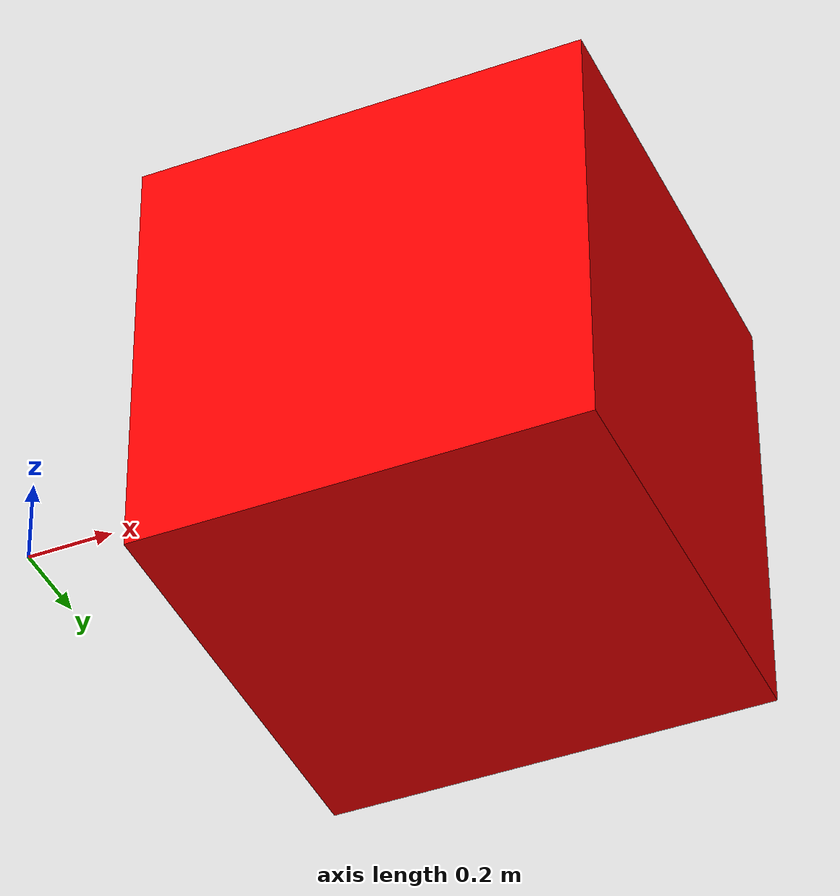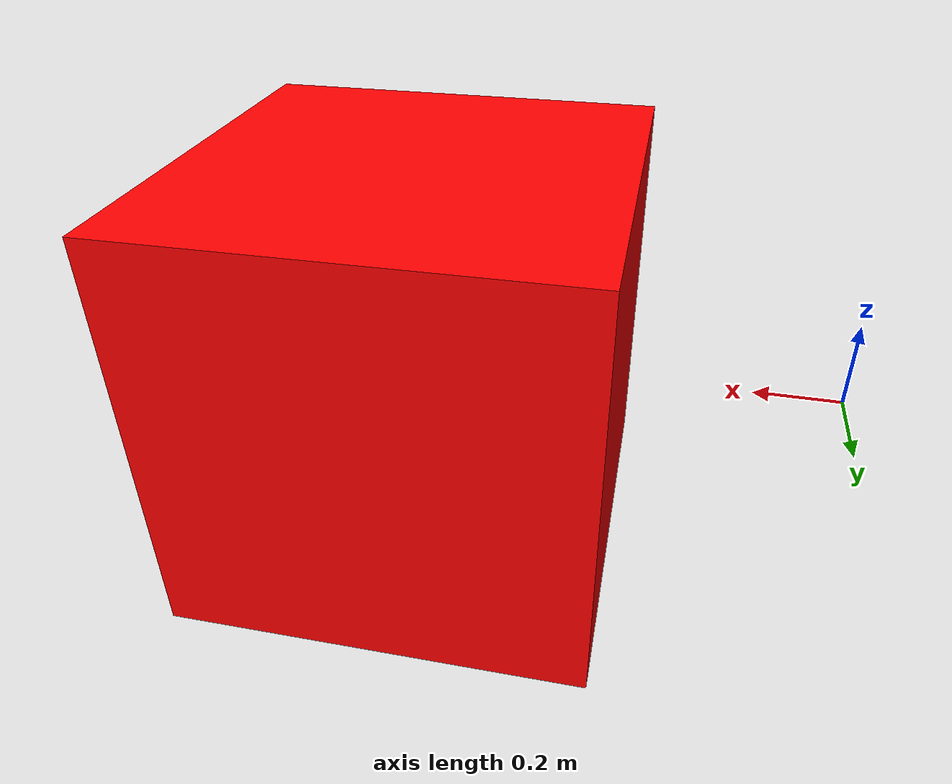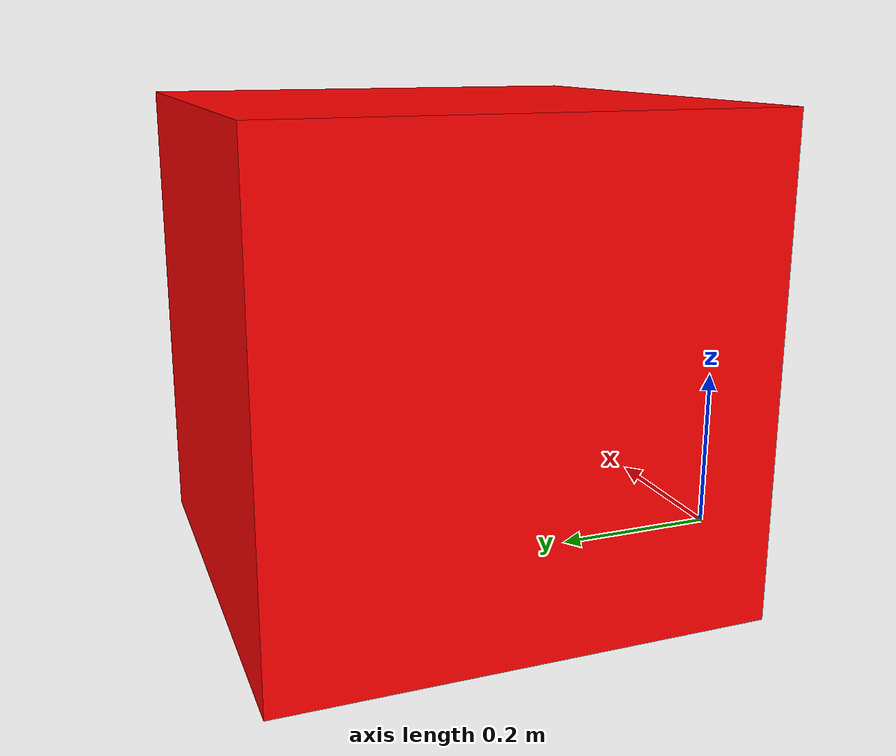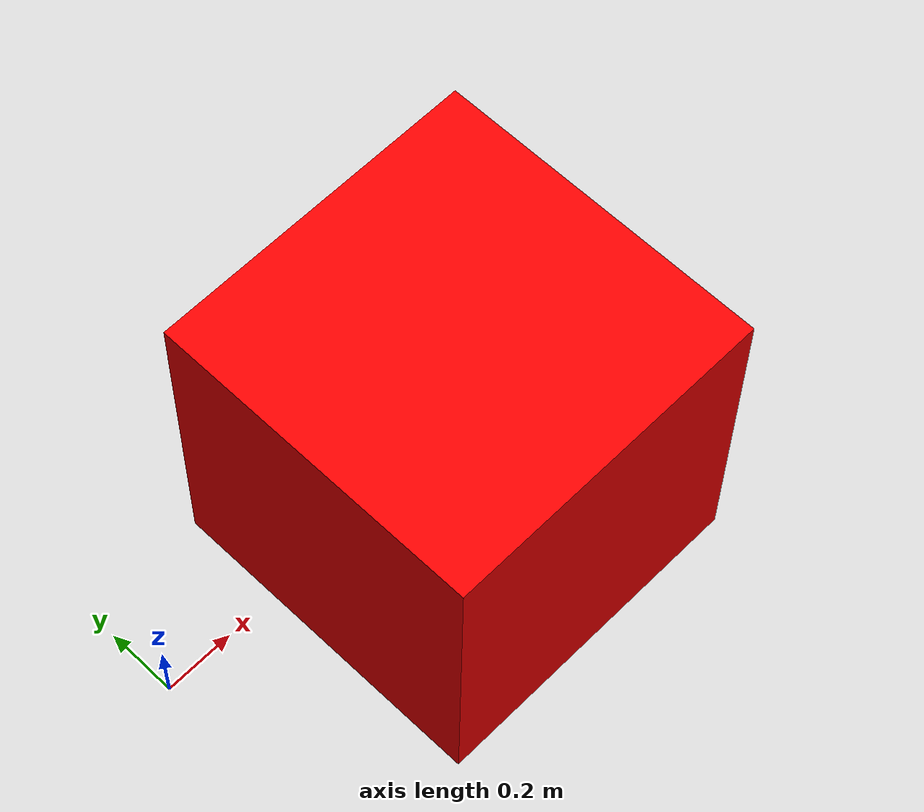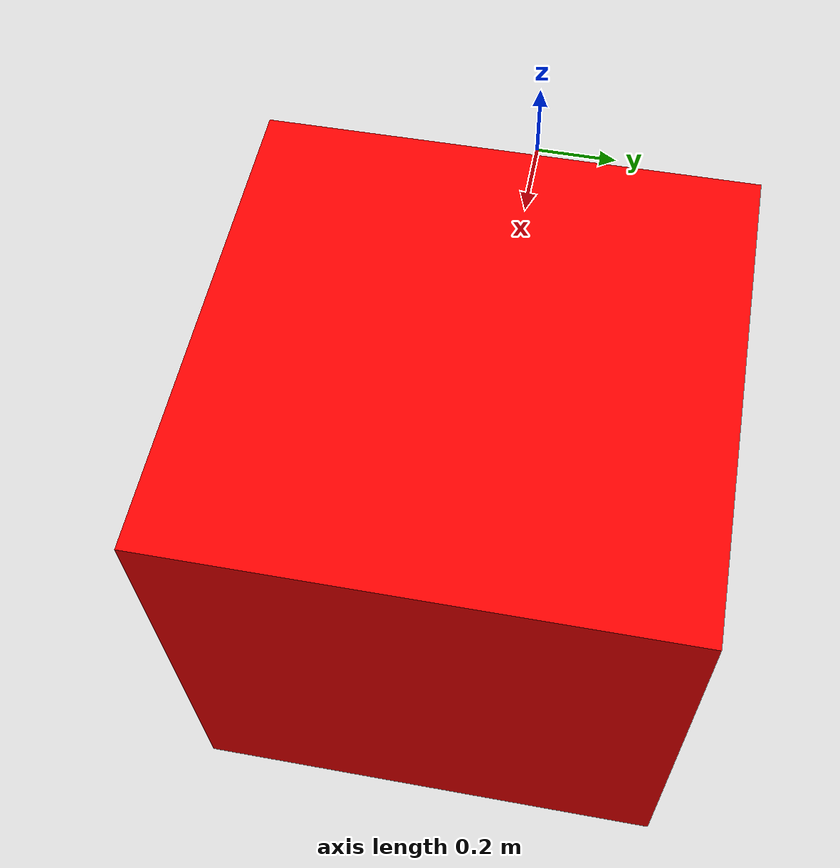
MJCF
<mujoco model='test1'>
    <default class="main">
        <geom rgba="1 0 0 1"/>
        <default class="sub">
            <geom rgba="0 1 0 1"/>
        </default>
    </default>

    <worldbody>
      <body>
        <geom type="box" pos="1 0 0" size="0.5 0.5 0.5"/>
      </body>
    </worldbody>
</mujoco>
